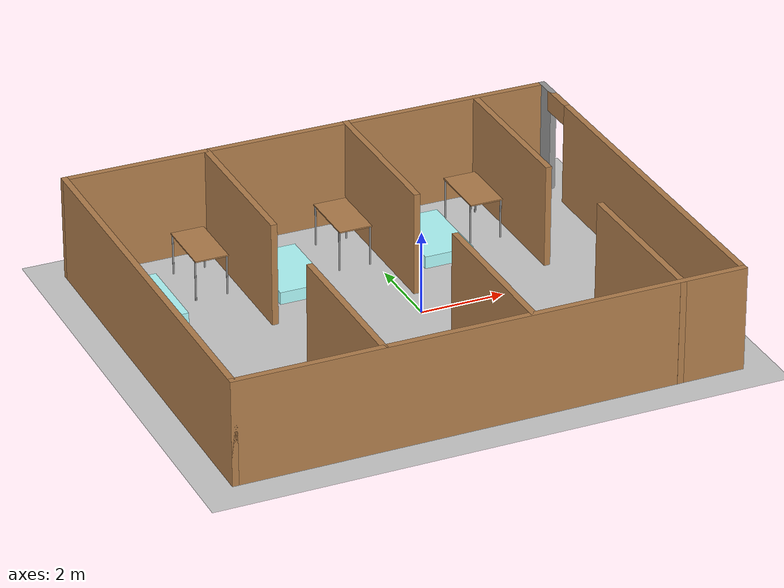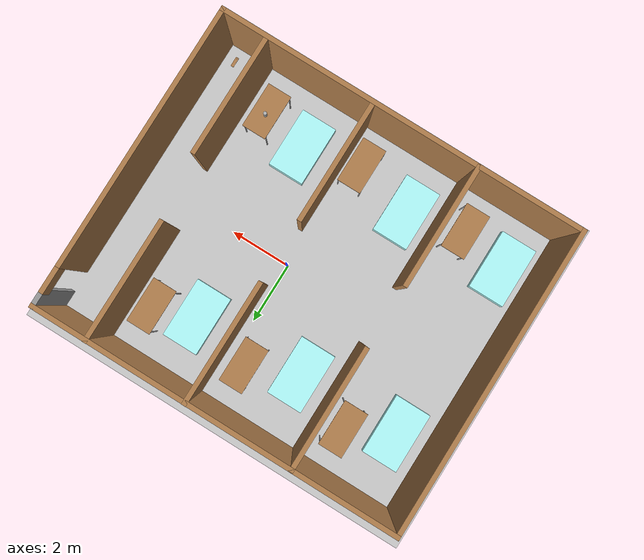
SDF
<sdf version="1.6">
 <world name="default">
  <light name="sun" type="directional">
   <pose>0 0 10 0 -0 0</pose>
   <diffuse>0.8 0.8 0.8 1</diffuse>
   <specular>0.2 0.2 0.2 1</specular>
   <attenuation>
    <range>1000</range>
    <constant>0.9</constant>
    <linear>0.01</linear>
    <quadratic>0.001</quadratic>
   </attenuation>
   <direction>-0.5 0.1 -0.9</direction>
  </light>
  <model name="ground_plane">
   <static>1</static>
   <link name="link">
    <collision name="collision">
     <geometry><plane><normal>0 0 1</normal><size>100 100</size></plane></geometry>
     <surface>
      <contact><collide_bitmask>65535</collide_bitmask></contact>
      <friction><ode><mu>100</mu><mu2>50</mu2></ode></friction>
     </surface>
    </collision>
    <visual name="visual">
     <cast_shadows>0</cast_shadows>
     <geometry><plane><normal>0 0 1</normal><size>100 100</size></plane></geometry>
     <material>
      <script><uri>file://media/materials/scripts/gazebo.material</uri><name>Gazebo/Grey</name></script>
     </material>
    </visual>
   </link>
  </model>
  <gravity>0 0 -9.8</gravity>
  <magnetic_field>6e-06 2.3e-05 -4.2e-05</magnetic_field>
  <atmosphere type="adiabatic"/>
  <physics name="default_physics" default="0" type="ode">
   <max_step_size>0.001</max_step_size>
   <real_time_factor>1</real_time_factor>
   <real_time_update_rate>1000</real_time_update_rate>
  </physics>
  <scene><ambient>0.4 0.4 0.4 1</ambient><background>0.7 0.7 0.7 1</background><shadows>1</shadows></scene>
  <spherical_coordinates>
   <surface_model>EARTH_WGS84</surface_model>
   <latitude_deg>0</latitude_deg>
   <longitude_deg>0</longitude_deg>
   <elevation>0</elevation>
   <heading_deg>0</heading_deg>
  </spherical_coordinates>
  <model name="table">
   <static>1</static>
   <link name="link">
    <collision name="surface">
     <pose>0 0 1 0 -0 0</pose>
     <geometry><box><size>1.5 0.8 0.03</size></box></geometry>
     <surface><friction><ode><mu>0.6</mu><mu2>0.6</mu2></ode></friction></surface>
    </collision>
    <visual name="visual1">
     <pose>0 0 1 0 -0 0</pose>
     <geometry><box><size>1.5 0.8 0.03</size></box></geometry>
     <material>
      <script><uri>file://media/materials/scripts/gazebo.material</uri><name>Gazebo/Wood</name></script>
     </material>
    </visual>
    <collision name="front_left_leg">
     <pose>0.68 0.38 0.5 0 -0 0</pose>
     <geometry><cylinder><radius>0.02</radius><length>1</length></cylinder></geometry>
    </collision>
    <visual name="front_left_leg">
     <pose>0.68 0.38 0.5 0 -0 0</pose>
     <geometry><cylinder><radius>0.02</radius><length>1</length></cylinder></geometry>
     <material>
      <script><uri>file://media/materials/scripts/gazebo.material</uri><name>Gazebo/Grey</name></script>
     </material>
    </visual>
    <collision name="front_right_leg">
     <pose>0.68 -0.38 0.5 0 -0 0</pose>
     <geometry><cylinder><radius>0.02</radius><length>1</length></cylinder></geometry>
    </collision>
    <visual name="front_right_leg">
     <pose>0.68 -0.38 0.5 0 -0 0</pose>
     <geometry><cylinder><radius>0.02</radius><length>1</length></cylinder></geometry>
     <material>
      <script><uri>file://media/materials/scripts/gazebo.material</uri><name>Gazebo/Grey</name></script>
     </material>
    </visual>
    <collision name="back_right_leg">
     <pose>-0.68 -0.38 0.5 0 -0 0</pose>
     <geometry><cylinder><radius>0.02</radius><length>1</length></cylinder></geometry>
    </collision>
    <visual name="back_right_leg">
     <pose>-0.68 -0.38 0.5 0 -0 0</pose>
     <geometry><cylinder><radius>0.02</radius><length>1</length></cylinder></geometry>
     <material>
      <script><uri>file://media/materials/scripts/gazebo.material</uri><name>Gazebo/Grey</name></script>
     </material>
    </visual>
    <collision name="back_left_leg">
     <pose>-0.68 0.38 0.5 0 -0 0</pose>
     <geometry><cylinder><radius>0.02</radius><length>1</length></cylinder></geometry>
    </collision>
    <visual name="back_left_leg">
     <pose>-0.68 0.38 0.5 0 -0 0</pose>
     <geometry><cylinder><radius>0.02</radius><length>1</length></cylinder></geometry>
     <material>
      <script><uri>file://media/materials/scripts/gazebo.material</uri><name>Gazebo/Grey</name></script>
     </material>
    </visual>
   </link>
   <pose>-3.99446 3.24297 0 0 0 -1.5708</pose>
  </model>
  <model name="table_clone">
   <static>1</static>
   <link name="link">
    <collision name="surface">
     <pose>0 0 1 0 -0 0</pose>
     <geometry><box><size>1.5 0.8 0.03</size></box></geometry>
     <surface><friction><ode><mu>0.6</mu><mu2>0.6</mu2></ode></friction></surface>
    </collision>
    <visual name="visual1">
     <pose>0 0 1 0 -0 0</pose>
     <geometry><box><size>1.5 0.8 0.03</size></box></geometry>
     <material>
      <script><uri>file://media/materials/scripts/gazebo.material</uri><name>Gazebo/Wood</name></script>
     </material>
    </visual>
    <collision name="front_left_leg">
     <pose>0.68 0.38 0.5 0 -0 0</pose>
     <geometry><cylinder><radius>0.02</radius><length>1</length></cylinder></geometry>
    </collision>
    <visual name="front_left_leg">
     <pose>0.68 0.38 0.5 0 -0 0</pose>
     <geometry><cylinder><radius>0.02</radius><length>1</length></cylinder></geometry>
     <material>
      <script><uri>file://media/materials/scripts/gazebo.material</uri><name>Gazebo/Grey</name></script>
     </material>
    </visual>
    <collision name="front_right_leg">
     <pose>0.68 -0.38 0.5 0 -0 0</pose>
     <geometry><cylinder><radius>0.02</radius><length>1</length></cylinder></geometry>
    </collision>
    <visual name="front_right_leg">
     <pose>0.68 -0.38 0.5 0 -0 0</pose>
     <geometry><cylinder><radius>0.02</radius><length>1</length></cylinder></geometry>
     <material>
      <script><uri>file://media/materials/scripts/gazebo.material</uri><name>Gazebo/Grey</name></script>
     </material>
    </visual>
    <collision name="back_right_leg">
     <pose>-0.68 -0.38 0.5 0 -0 0</pose>
     <geometry><cylinder><radius>0.02</radius><length>1</length></cylinder></geometry>
    </collision>
    <visual name="back_right_leg">
     <pose>-0.68 -0.38 0.5 0 -0 0</pose>
     <geometry><cylinder><radius>0.02</radius><length>1</length></cylinder></geometry>
     <material>
      <script><uri>file://media/materials/scripts/gazebo.material</uri><name>Gazebo/Grey</name></script>
     </material>
    </visual>
    <collision name="back_left_leg">
     <pose>-0.68 0.38 0.5 0 -0 0</pose>
     <geometry><cylinder><radius>0.02</radius><length>1</length></cylinder></geometry>
    </collision>
    <visual name="back_left_leg">
     <pose>-0.68 0.38 0.5 0 -0 0</pose>
     <geometry><cylinder><radius>0.02</radius><length>1</length></cylinder></geometry>
     <material>
      <script><uri>file://media/materials/scripts/gazebo.material</uri><name>Gazebo/Grey</name></script>
     </material>
    </visual>
   </link>
   <pose>-0.510494 3.20896 0 0 0 -1.5708</pose>
  </model>
  <model name="table_clone_0">
   <static>1</static>
   <link name="link">
    <collision name="surface">
     <pose>0 0 1 0 -0 0</pose>
     <geometry><box><size>1.5 0.8 0.03</size></box></geometry>
     <surface><friction><ode><mu>0.6</mu><mu2>0.6</mu2></ode></friction></surface>
    </collision>
    <visual name="visual1">
     <pose>0 0 1 0 -0 0</pose>
     <geometry><box><size>1.5 0.8 0.03</size></box></geometry>
     <material>
      <script><uri>file://media/materials/scripts/gazebo.material</uri><name>Gazebo/Wood</name></script>
     </material>
    </visual>
    <collision name="front_left_leg">
     <pose>0.68 0.38 0.5 0 -0 0</pose>
     <geometry><cylinder><radius>0.02</radius><length>1</length></cylinder></geometry>
    </collision>
    <visual name="front_left_leg">
     <pose>0.68 0.38 0.5 0 -0 0</pose>
     <geometry><cylinder><radius>0.02</radius><length>1</length></cylinder></geometry>
     <material>
      <script><uri>file://media/materials/scripts/gazebo.material</uri><name>Gazebo/Grey</name></script>
     </material>
    </visual>
    <collision name="front_right_leg">
     <pose>0.68 -0.38 0.5 0 -0 0</pose>
     <geometry><cylinder><radius>0.02</radius><length>1</length></cylinder></geometry>
    </collision>
    <visual name="front_right_leg">
     <pose>0.68 -0.38 0.5 0 -0 0</pose>
     <geometry><cylinder><radius>0.02</radius><length>1</length></cylinder></geometry>
     <material>
      <script><uri>file://media/materials/scripts/gazebo.material</uri><name>Gazebo/Grey</name></script>
     </material>
    </visual>
    <collision name="back_right_leg">
     <pose>-0.68 -0.38 0.5 0 -0 0</pose>
     <geometry><cylinder><radius>0.02</radius><length>1</length></cylinder></geometry>
    </collision>
    <visual name="back_right_leg">
     <pose>-0.68 -0.38 0.5 0 -0 0</pose>
     <geometry><cylinder><radius>0.02</radius><length>1</length></cylinder></geometry>
     <material>
      <script><uri>file://media/materials/scripts/gazebo.material</uri><name>Gazebo/Grey</name></script>
     </material>
    </visual>
    <collision name="back_left_leg">
     <pose>-0.68 0.38 0.5 0 -0 0</pose>
     <geometry><cylinder><radius>0.02</radius><length>1</length></cylinder></geometry>
    </collision>
    <visual name="back_left_leg">
     <pose>-0.68 0.38 0.5 0 -0 0</pose>
     <geometry><cylinder><radius>0.02</radius><length>1</length></cylinder></geometry>
     <material>
      <script><uri>file://media/materials/scripts/gazebo.material</uri><name>Gazebo/Grey</name></script>
     </material>
    </visual>
   </link>
   <pose>2.7438 3.17605 0 0 0 -1.5708</pose>
  </model>
  <model name="table_clone_1">
   <static>1</static>
   <link name="link">
    <collision name="surface">
     <pose>0 0 1 0 -0 0</pose>
     <geometry><box><size>1.5 0.8 0.03</size></box></geometry>
     <surface><friction><ode><mu>0.6</mu><mu2>0.6</mu2></ode></friction></surface>
    </collision>
    <visual name="visual1">
     <pose>0 0 1 0 -0 0</pose>
     <geometry><box><size>1.5 0.8 0.03</size></box></geometry>
     <material>
      <script><uri>file://media/materials/scripts/gazebo.material</uri><name>Gazebo/Wood</name></script>
     </material>
    </visual>
    <collision name="front_left_leg">
     <pose>0.68 0.38 0.5 0 -0 0</pose>
     <geometry><cylinder><radius>0.02</radius><length>1</length></cylinder></geometry>
    </collision>
    <visual name="front_left_leg">
     <pose>0.68 0.38 0.5 0 -0 0</pose>
     <geometry><cylinder><radius>0.02</radius><length>1</length></cylinder></geometry>
     <material>
      <script><uri>file://media/materials/scripts/gazebo.material</uri><name>Gazebo/Grey</name></script>
     </material>
    </visual>
    <collision name="front_right_leg">
     <pose>0.68 -0.38 0.5 0 -0 0</pose>
     <geometry><cylinder><radius>0.02</radius><length>1</length></cylinder></geometry>
    </collision>
    <visual name="front_right_leg">
     <pose>0.68 -0.38 0.5 0 -0 0</pose>
     <geometry><cylinder><radius>0.02</radius><length>1</length></cylinder></geometry>
     <material>
      <script><uri>file://media/materials/scripts/gazebo.material</uri><name>Gazebo/Grey</name></script>
     </material>
    </visual>
    <collision name="back_right_leg">
     <pose>-0.68 -0.38 0.5 0 -0 0</pose>
     <geometry><cylinder><radius>0.02</radius><length>1</length></cylinder></geometry>
    </collision>
    <visual name="back_right_leg">
     <pose>-0.68 -0.38 0.5 0 -0 0</pose>
     <geometry><cylinder><radius>0.02</radius><length>1</length></cylinder></geometry>
     <material>
      <script><uri>file://media/materials/scripts/gazebo.material</uri><name>Gazebo/Grey</name></script>
     </material>
    </visual>
    <collision name="back_left_leg">
     <pose>-0.68 0.38 0.5 0 -0 0</pose>
     <geometry><cylinder><radius>0.02</radius><length>1</length></cylinder></geometry>
    </collision>
    <visual name="back_left_leg">
     <pose>-0.68 0.38 0.5 0 -0 0</pose>
     <geometry><cylinder><radius>0.02</radius><length>1</length></cylinder></geometry>
     <material>
      <script><uri>file://media/materials/scripts/gazebo.material</uri><name>Gazebo/Grey</name></script>
     </material>
    </visual>
   </link>
   <pose>2.95531 -3.58663 0 0 0 -1.5708</pose>
  </model>
  <model name="table_clone_2">
   <static>1</static>
   <link name="link">
    <collision name="surface">
     <pose>0 0 1 0 -0 0</pose>
     <geometry><box><size>1.5 0.8 0.03</size></box></geometry>
     <surface><friction><ode><mu>0.6</mu><mu2>0.6</mu2></ode></friction></surface>
    </collision>
    <visual name="visual1">
     <pose>0 0 1 0 -0 0</pose>
     <geometry><box><size>1.5 0.8 0.03</size></box></geometry>
     <material>
      <script><uri>file://media/materials/scripts/gazebo.material</uri><name>Gazebo/Wood</name></script>
     </material>
    </visual>
    <collision name="front_left_leg">
     <pose>0.68 0.38 0.5 0 -0 0</pose>
     <geometry><cylinder><radius>0.02</radius><length>1</length></cylinder></geometry>
    </collision>
    <visual name="front_left_leg">
     <pose>0.68 0.38 0.5 0 -0 0</pose>
     <geometry><cylinder><radius>0.02</radius><length>1</length></cylinder></geometry>
     <material>
      <script><uri>file://media/materials/scripts/gazebo.material</uri><name>Gazebo/Grey</name></script>
     </material>
    </visual>
    <collision name="front_right_leg">
     <pose>0.68 -0.38 0.5 0 -0 0</pose>
     <geometry><cylinder><radius>0.02</radius><length>1</length></cylinder></geometry>
    </collision>
    <visual name="front_right_leg">
     <pose>0.68 -0.38 0.5 0 -0 0</pose>
     <geometry><cylinder><radius>0.02</radius><length>1</length></cylinder></geometry>
     <material>
      <script><uri>file://media/materials/scripts/gazebo.material</uri><name>Gazebo/Grey</name></script>
     </material>
    </visual>
    <collision name="back_right_leg">
     <pose>-0.68 -0.38 0.5 0 -0 0</pose>
     <geometry><cylinder><radius>0.02</radius><length>1</length></cylinder></geometry>
    </collision>
    <visual name="back_right_leg">
     <pose>-0.68 -0.38 0.5 0 -0 0</pose>
     <geometry><cylinder><radius>0.02</radius><length>1</length></cylinder></geometry>
     <material>
      <script><uri>file://media/materials/scripts/gazebo.material</uri><name>Gazebo/Grey</name></script>
     </material>
    </visual>
    <collision name="back_left_leg">
     <pose>-0.68 0.38 0.5 0 -0 0</pose>
     <geometry><cylinder><radius>0.02</radius><length>1</length></cylinder></geometry>
    </collision>
    <visual name="back_left_leg">
     <pose>-0.68 0.38 0.5 0 -0 0</pose>
     <geometry><cylinder><radius>0.02</radius><length>1</length></cylinder></geometry>
     <material>
      <script><uri>file://media/materials/scripts/gazebo.material</uri><name>Gazebo/Grey</name></script>
     </material>
    </visual>
   </link>
   <pose>-0.330912 -3.70029 0 0 0 -1.5708</pose>
  </model>
  <model name="table_clone_3">
   <static>1</static>
   <link name="link">
    <collision name="surface">
     <pose>0 0 1 0 -0 0</pose>
     <geometry><box><size>1.5 0.8 0.03</size></box></geometry>
     <surface><friction><ode><mu>0.6</mu><mu2>0.6</mu2></ode></friction></surface>
    </collision>
    <visual name="visual1">
     <pose>0 0 1 0 -0 0</pose>
     <geometry><box><size>1.5 0.8 0.03</size></box></geometry>
     <material>
      <script><uri>file://media/materials/scripts/gazebo.material</uri><name>Gazebo/Wood</name></script>
     </material>
    </visual>
    <collision name="front_left_leg">
     <pose>0.68 0.38 0.5 0 -0 0</pose>
     <geometry><cylinder><radius>0.02</radius><length>1</length></cylinder></geometry>
    </collision>
    <visual name="front_left_leg">
     <pose>0.68 0.38 0.5 0 -0 0</pose>
     <geometry><cylinder><radius>0.02</radius><length>1</length></cylinder></geometry>
     <material>
      <script><uri>file://media/materials/scripts/gazebo.material</uri><name>Gazebo/Grey</name></script>
     </material>
    </visual>
    <collision name="front_right_leg">
     <pose>0.68 -0.38 0.5 0 -0 0</pose>
     <geometry><cylinder><radius>0.02</radius><length>1</length></cylinder></geometry>
    </collision>
    <visual name="front_right_leg">
     <pose>0.68 -0.38 0.5 0 -0 0</pose>
     <geometry><cylinder><radius>0.02</radius><length>1</length></cylinder></geometry>
     <material>
      <script><uri>file://media/materials/scripts/gazebo.material</uri><name>Gazebo/Grey</name></script>
     </material>
    </visual>
    <collision name="back_right_leg">
     <pose>-0.68 -0.38 0.5 0 -0 0</pose>
     <geometry><cylinder><radius>0.02</radius><length>1</length></cylinder></geometry>
    </collision>
    <visual name="back_right_leg">
     <pose>-0.68 -0.38 0.5 0 -0 0</pose>
     <geometry><cylinder><radius>0.02</radius><length>1</length></cylinder></geometry>
     <material>
      <script><uri>file://media/materials/scripts/gazebo.material</uri><name>Gazebo/Grey</name></script>
     </material>
    </visual>
    <collision name="back_left_leg">
     <pose>-0.68 0.38 0.5 0 -0 0</pose>
     <geometry><cylinder><radius>0.02</radius><length>1</length></cylinder></geometry>
    </collision>
    <visual name="back_left_leg">
     <pose>-0.68 0.38 0.5 0 -0 0</pose>
     <geometry><cylinder><radius>0.02</radius><length>1</length></cylinder></geometry>
     <material>
      <script><uri>file://media/materials/scripts/gazebo.material</uri><name>Gazebo/Grey</name></script>
     </material>
    </visual>
   </link>
   <pose>-3.9986 -3.65732 0 0 0 -1.5708</pose>
  </model>
  <model name="hospital">
   <pose>-0.664779 -0.17358 0 0 -0 0</pose>
   <link name="Wall_28">
    <collision name="Wall_28_Collision">
     <geometry><box><size>12 0.15 2.5</size></box></geometry>
     <pose>0 0 1.25 0 -0 0</pose>
    </collision>
    <visual name="Wall_28_Visual">
     <pose>0 0 1.25 0 -0 0</pose>
     <geometry><box><size>12 0.15 2.5</size></box></geometry>
     <material>
      <script><uri>file://media/materials/scripts/gazebo.material</uri><name>Gazebo/Wood</name></script>
      <ambient>1 1 1 1</ambient>
     </material>
     <meta><layer>0</layer></meta>
    </visual>
    <pose>-0 4.92328 0 0 -0 0</pose>
   </link>
   <link name="Wall_30">
    <collision name="Wall_30_Collision">
     <geometry><box><size>10 0.15 2.5</size></box></geometry>
     <pose>0 0 1.25 0 -0 0</pose>
    </collision>
    <visual name="Wall_30_Visual">
     <pose>0 0 1.25 0 -0 0</pose>
     <geometry><box><size>10 0.15 2.5</size></box></geometry>
     <material>
      <script><uri>file://media/materials/scripts/gazebo.material</uri><name>Gazebo/Wood</name></script>
      <ambient>1 1 1 1</ambient>
     </material>
     <meta><layer>0</layer></meta>
    </visual>
    <pose>-5.925 -0.001719 0 0 -0 -1.5708</pose>
   </link>
   <link name="Wall_31">
    <collision name="Wall_31_Collision">
     <geometry><box><size>12 0.15 2.5</size></box></geometry>
     <pose>0 0 1.25 0 -0 0</pose>
    </collision>
    <visual name="Wall_31_Visual">
     <pose>0 0 1.25 0 -0 0</pose>
     <geometry><box><size>12 0.15 2.5</size></box></geometry>
     <material>
      <script><uri>file://media/materials/scripts/gazebo.material</uri><name>Gazebo/Wood</name></script>
      <ambient>1 1 1 1</ambient>
     </material>
     <meta><layer>0</layer></meta>
    </visual>
    <pose>-0 -4.92672 0 0 -0 0</pose>
   </link>
   <link name="Wall_32">
    <pose>5.925 -0.251719 0 0 -0 1.5708</pose>
    <visual name="Wall_32_Visual_0">
     <pose>-0.423302 0 1.25 0 -0 0</pose>
     <geometry><box><size>8.65339 0.15 2.5</size></box></geometry>
     <material>
      <script><uri>file://media/materials/scripts/gazebo.material</uri><name>Gazebo/Wood</name></script>
      <ambient>1 1 1 1</ambient>
     </material>
     <meta><layer>0</layer></meta>
    </visual>
    <collision name="Wall_32_Collision_0">
     <geometry><box><size>8.65339 0.15 2.5</size></box></geometry>
     <pose>-0.423302 0 1.25 0 -0 0</pose>
    </collision>
    <visual name="Wall_32_Visual_1">
     <pose>4.3267 0 2.25 0 -0 0</pose>
     <geometry><box><size>0.846605 0.15 0.5</size></box></geometry>
     <material>
      <script><uri>file://media/materials/scripts/gazebo.material</uri><name>Gazebo/Wood</name></script>
      <ambient>1 1 1 1</ambient>
     </material>
     <meta><layer>0</layer></meta>
    </visual>
    <collision name="Wall_32_Collision_1">
     <geometry><box><size>0.846605 0.15 0.5</size></box></geometry>
     <pose>4.3267 0 2.25 0 -0 0</pose>
    </collision>
   </link>
   <link name="Wall_33">
    <collision name="Wall_33_Collision">
     <geometry><box><size>0.65 0.15 2.5</size></box></geometry>
     <pose>0 0 1.25 0 -0 0</pose>
    </collision>
    <visual name="Wall_33_Visual">
     <pose>0 0 1.25 0 -0 0</pose>
     <geometry><box><size>0.65 0.15 2.5</size></box></geometry>
     <material>
      <script><uri>file://media/materials/scripts/gazebo.material</uri><name>Gazebo/Grey</name></script>
      <ambient>1 1 1 1</ambient>
     </material>
     <meta><layer>0</layer></meta>
    </visual>
    <pose>5.925 4.67328 0 0 -0 1.5708</pose>
   </link>
   <link name="Wall_42">
    <collision name="Wall_42_Collision">
     <geometry><box><size>4 0.15 2.5</size></box></geometry>
     <pose>0 0 1.25 0 -0 0</pose>
    </collision>
    <visual name="Wall_42_Visual">
     <pose>0 0 1.25 0 -0 0</pose>
     <geometry><box><size>4 0.15 2.5</size></box></geometry>
     <material>
      <script><uri>file://media/materials/scripts/gazebo.material</uri><name>Gazebo/Wood</name></script>
      <ambient>1 1 1 1</ambient>
     </material>
     <meta><layer>0</layer></meta>
    </visual>
    <pose>-2.51881 2.98168 0 0 -0 -1.5708</pose>
   </link>
   <link name="Wall_45">
    <collision name="Wall_45_Collision">
     <geometry><box><size>4 0.15 2.5</size></box></geometry>
     <pose>0 0 1.25 0 -0 0</pose>
    </collision>
    <visual name="Wall_45_Visual">
     <pose>0 0 1.25 0 -0 0</pose>
     <geometry><box><size>4 0.15 2.5</size></box></geometry>
     <material>
      <script><uri>file://media/materials/scripts/gazebo.material</uri><name>Gazebo/Wood</name></script>
      <ambient>1 1 1 1</ambient>
     </material>
     <meta><layer>0</layer></meta>
    </visual>
    <pose>0.931193 3.00468 0 0 -0 -1.5708</pose>
   </link>
   <link name="Wall_47">
    <collision name="Wall_47_Collision">
     <geometry><box><size>4 0.15 2.5</size></box></geometry>
     <pose>0 0 1.25 0 -0 0</pose>
    </collision>
    <visual name="Wall_47_Visual">
     <pose>0 0 1.25 0 -0 0</pose>
     <geometry><box><size>4 0.15 2.5</size></box></geometry>
     <material>
      <script><uri>file://media/materials/scripts/gazebo.material</uri><name>Gazebo/Wood</name></script>
      <ambient>1 1 1 1</ambient>
     </material>
     <meta><layer>0</layer></meta>
    </visual>
    <pose>4.17419 3.00468 0 0 -0 -1.5708</pose>
   </link>
   <link name="Wall_49">
    <collision name="Wall_49_Collision">
     <geometry><box><size>4 0.15 2.5</size></box></geometry>
     <pose>0 0 1.25 0 -0 0</pose>
    </collision>
    <visual name="Wall_49_Visual">
     <pose>0 0 1.25 0 -0 0</pose>
     <geometry><box><size>4 0.15 2.5</size></box></geometry>
     <material>
      <script><uri>file://media/materials/scripts/gazebo.material</uri><name>Gazebo/Wood</name></script>
      <ambient>1 1 1 1</ambient>
     </material>
     <meta><layer>0</layer></meta>
    </visual>
    <pose>-2.51795 -2.98168 0 0 -0 1.5708</pose>
   </link>
   <link name="Wall_51">
    <collision name="Wall_51_Collision">
     <geometry><box><size>4 0.15 2.5</size></box></geometry>
     <pose>0 0 1.25 0 -0 0</pose>
    </collision>
    <visual name="Wall_51_Visual">
     <pose>0 0 1.25 0 -0 0</pose>
     <geometry><box><size>4 0.15 2.5</size></box></geometry>
     <material>
      <script><uri>file://media/materials/scripts/gazebo.material</uri><name>Gazebo/Wood</name></script>
      <ambient>1 1 1 1</ambient>
     </material>
     <meta><layer>0</layer></meta>
    </visual>
    <pose>0.93205 -2.98168 0 0 -0 1.5708</pose>
   </link>
   <link name="Wall_53">
    <collision name="Wall_53_Collision">
     <geometry><box><size>4 0.15 2.5</size></box></geometry>
     <pose>0 0 1.25 0 -0 0</pose>
    </collision>
    <visual name="Wall_53_Visual">
     <pose>0 0 1.25 0 -0 0</pose>
     <geometry><box><size>4 0.15 2.5</size></box></geometry>
     <material>
      <script><uri>file://media/materials/scripts/gazebo.material</uri><name>Gazebo/Wood</name></script>
      <ambient>1 1 1 1</ambient>
     </material>
     <meta><layer>0</layer></meta>
    </visual>
    <pose>4.45105 -3.00468 0 0 -0 1.5708</pose>
   </link>
   <static>1</static>
  </model>
  <model name="Bed">
   <link name="link_1">
    <inertial>
     <mass>700</mass>
     <inertia><ixx>116.667</ixx><ixy>0</ixy><ixz>0</ixz><iyy>116.667</iyy><iyz>0</iyz><izz>116.667</izz></inertia>
    </inertial>
    <visual name="visual">
     <geometry><box><size>1.2 2 0.3</size></box></geometry>
     <material>
      <lighting>1</lighting>
      <script><uri>file://media/materials/scripts/gazebo.material</uri><name>Gazebo/Grey</name></script>
      <shader type="pixel"><normal_map>__default__</normal_map></shader>
      <ambient>1 0.3 0.3 1</ambient>
      <diffuse>0.7 1 1 1</diffuse>
      <specular>1 1 0.01 1</specular>
      <emissive>0 1 1 1</emissive>
     </material>
    </visual>
    <collision name="collision">
     <geometry><box><size>1.2 2 0.3</size></box></geometry>
     <surface>
      <friction>
       <ode><mu>1</mu><mu2>1</mu2><fdir1>0 0 0</fdir1><slip1>0</slip1><slip2>0</slip2></ode>
       <torsional>
        <coefficient>1</coefficient>
        <patch_radius>0</patch_radius>
        <surface_radius>0</surface_radius>
        <use_patch_radius>1</use_patch_radius>
        <ode><slip>0</slip></ode>
       </torsional>
      </friction>
      <bounce><restitution_coefficient>0</restitution_coefficient><threshold>1e+06</threshold></bounce>
      <contact>
       <collide_without_contact>0</collide_without_contact>
       <collide_without_contact_bitmask>1</collide_without_contact_bitmask>
       <collide_bitmask>1</collide_bitmask>
       <ode>
        <soft_cfm>0</soft_cfm>
        <soft_erp>0.2</soft_erp>
        <kp>1e+13</kp>
        <kd>1</kd>
        <max_vel>0.01</max_vel>
        <min_depth>0</min_depth>
       </ode>
       <bullet>
        <split_impulse>1</split_impulse>
        <split_impulse_penetration_threshold>-0.01</split_impulse_penetration_threshold>
        <soft_cfm>0</soft_cfm>
        <soft_erp>0.2</soft_erp>
        <kp>1e+13</kp>
        <kd>1</kd>
       </bullet>
      </contact>
     </surface>
    </collision>
   </link>
   <static>0</static>
   <pose>1.56551 -3.37109 0.15 0 -0 0</pose>
  </model>
  <model name="Bed_0">
   <link name="link_1">
    <inertial>
     <mass>700</mass>
     <inertia><ixx>116.667</ixx><ixy>0</ixy><ixz>0</ixz><iyy>116.667</iyy><iyz>0</iyz><izz>116.667</izz></inertia>
    </inertial>
    <visual name="visual">
     <geometry><box><size>1.2 2 0.3</size></box></geometry>
     <material>
      <lighting>1</lighting>
      <script><uri>file://media/materials/scripts/gazebo.material</uri><name>Gazebo/Grey</name></script>
      <shader type="pixel"><normal_map>__default__</normal_map></shader>
      <ambient>1 0.3 0.3 1</ambient>
      <diffuse>0.7 1 1 1</diffuse>
      <specular>1 1 0.01 1</specular>
      <emissive>0 1 1 1</emissive>
     </material>
    </visual>
    <collision name="collision">
     <geometry><box><size>1.2 2 0.3</size></box></geometry>
     <surface>
      <friction>
       <ode><mu>1</mu><mu2>1</mu2><fdir1>0 0 0</fdir1><slip1>0</slip1><slip2>0</slip2></ode>
       <torsional>
        <coefficient>1</coefficient>
        <patch_radius>0</patch_radius>
        <surface_radius>0</surface_radius>
        <use_patch_radius>1</use_patch_radius>
        <ode><slip>0</slip></ode>
       </torsional>
      </friction>
      <bounce><restitution_coefficient>0</restitution_coefficient><threshold>1e+06</threshold></bounce>
      <contact>
       <collide_without_contact>0</collide_without_contact>
       <collide_without_contact_bitmask>1</collide_without_contact_bitmask>
       <collide_bitmask>1</collide_bitmask>
       <ode>
        <soft_cfm>0</soft_cfm>
        <soft_erp>0.2</soft_erp>
        <kp>1e+13</kp>
        <kd>1</kd>
        <max_vel>0.01</max_vel>
        <min_depth>0</min_depth>
       </ode>
       <bullet>
        <split_impulse>1</split_impulse>
        <split_impulse_penetration_threshold>-0.01</split_impulse_penetration_threshold>
        <soft_cfm>0</soft_cfm>
        <soft_erp>0.2</soft_erp>
        <kp>1e+13</kp>
        <kd>1</kd>
       </bullet>
      </contact>
     </surface>
    </collision>
   </link>
   <static>0</static>
   <pose>-2.23846 -3.34989 0.15 0 -0 0</pose>
  </model>
  <model name="Bed_1">
   <link name="link_1">
    <inertial>
     <mass>700</mass>
     <inertia><ixx>116.667</ixx><ixy>0</ixy><ixz>0</ixz><iyy>116.667</iyy><iyz>0</iyz><izz>116.667</izz></inertia>
    </inertial>
    <visual name="visual">
     <geometry><box><size>1.2 2 0.3</size></box></geometry>
     <material>
      <lighting>1</lighting>
      <script><uri>file://media/materials/scripts/gazebo.material</uri><name>Gazebo/Grey</name></script>
      <shader type="pixel"><normal_map>__default__</normal_map></shader>
      <ambient>1 0.3 0.3 1</ambient>
      <diffuse>0.7 1 1 1</diffuse>
      <specular>1 1 0.01 1</specular>
      <emissive>0 1 1 1</emissive>
     </material>
    </visual>
    <collision name="collision">
     <geometry><box><size>1.2 2 0.3</size></box></geometry>
     <surface>
      <friction>
       <ode><mu>1</mu><mu2>1</mu2><fdir1>0 0 0</fdir1><slip1>0</slip1><slip2>0</slip2></ode>
       <torsional>
        <coefficient>1</coefficient>
        <patch_radius>0</patch_radius>
        <surface_radius>0</surface_radius>
        <use_patch_radius>1</use_patch_radius>
        <ode><slip>0</slip></ode>
       </torsional>
      </friction>
      <bounce><restitution_coefficient>0</restitution_coefficient><threshold>1e+06</threshold></bounce>
      <contact>
       <collide_without_contact>0</collide_without_contact>
       <collide_without_contact_bitmask>1</collide_without_contact_bitmask>
       <collide_bitmask>1</collide_bitmask>
       <ode>
        <soft_cfm>0</soft_cfm>
        <soft_erp>0.2</soft_erp>
        <kp>1e+13</kp>
        <kd>1</kd>
        <max_vel>0.01</max_vel>
        <min_depth>0</min_depth>
       </ode>
       <bullet>
        <split_impulse>1</split_impulse>
        <split_impulse_penetration_threshold>-0.01</split_impulse_penetration_threshold>
        <soft_cfm>0</soft_cfm>
        <soft_erp>0.2</soft_erp>
        <kp>1e+13</kp>
        <kd>1</kd>
       </bullet>
      </contact>
     </surface>
    </collision>
   </link>
   <static>0</static>
   <pose>-5.66815 -3.41681 0.15 0 -0 0</pose>
  </model>
  <model name="Bed_2">
   <link name="link_1">
    <inertial>
     <mass>700</mass>
     <inertia><ixx>116.667</ixx><ixy>0</ixy><ixz>0</ixz><iyy>116.667</iyy><iyz>0</iyz><izz>116.667</izz></inertia>
    </inertial>
    <visual name="visual">
     <geometry><box><size>1.2 2 0.3</size></box></geometry>
     <material>
      <lighting>1</lighting>
      <script><uri>file://media/materials/scripts/gazebo.material</uri><name>Gazebo/Grey</name></script>
      <shader type="pixel"><normal_map>__default__</normal_map></shader>
      <ambient>1 0.3 0.3 1</ambient>
      <diffuse>0.7 1 1 1</diffuse>
      <specular>1 1 0.01 1</specular>
      <emissive>0 1 1 1</emissive>
     </material>
    </visual>
    <collision name="collision">
     <geometry><box><size>1.2 2 0.3</size></box></geometry>
     <surface>
      <friction>
       <ode><mu>1</mu><mu2>1</mu2><fdir1>0 0 0</fdir1><slip1>0</slip1><slip2>0</slip2></ode>
       <torsional>
        <coefficient>1</coefficient>
        <patch_radius>0</patch_radius>
        <surface_radius>0</surface_radius>
        <use_patch_radius>1</use_patch_radius>
        <ode><slip>0</slip></ode>
       </torsional>
      </friction>
      <bounce><restitution_coefficient>0</restitution_coefficient><threshold>1e+06</threshold></bounce>
      <contact>
       <collide_without_contact>0</collide_without_contact>
       <collide_without_contact_bitmask>1</collide_without_contact_bitmask>
       <collide_bitmask>1</collide_bitmask>
       <ode>
        <soft_cfm>0</soft_cfm>
        <soft_erp>0.2</soft_erp>
        <kp>1e+13</kp>
        <kd>1</kd>
        <max_vel>0.01</max_vel>
        <min_depth>0</min_depth>
       </ode>
       <bullet>
        <split_impulse>1</split_impulse>
        <split_impulse_penetration_threshold>-0.01</split_impulse_penetration_threshold>
        <soft_cfm>0</soft_cfm>
        <soft_erp>0.2</soft_erp>
        <kp>1e+13</kp>
        <kd>1</kd>
       </bullet>
      </contact>
     </surface>
    </collision>
   </link>
   <static>0</static>
   <pose>1.51819 2.80789 0.15 0 -0 0</pose>
  </model>
  <model name="Bed_3">
   <link name="link_1">
    <inertial>
     <mass>700</mass>
     <inertia><ixx>116.667</ixx><ixy>0</ixy><ixz>0</ixz><iyy>116.667</iyy><iyz>0</iyz><izz>116.667</izz></inertia>
    </inertial>
    <visual name="visual">
     <geometry><box><size>1.2 2 0.3</size></box></geometry>
     <material>
      <lighting>1</lighting>
      <script><uri>file://media/materials/scripts/gazebo.material</uri><name>Gazebo/Grey</name></script>
      <shader type="pixel"><normal_map>__default__</normal_map></shader>
      <ambient>1 0.3 0.3 1</ambient>
      <diffuse>0.7 1 1 1</diffuse>
      <specular>1 1 0.01 1</specular>
      <emissive>0 1 1 1</emissive>
     </material>
    </visual>
    <collision name="collision">
     <geometry><box><size>1.2 2 0.3</size></box></geometry>
     <surface>
      <friction>
       <ode><mu>1</mu><mu2>1</mu2><fdir1>0 0 0</fdir1><slip1>0</slip1><slip2>0</slip2></ode>
       <torsional>
        <coefficient>1</coefficient>
        <patch_radius>0</patch_radius>
        <surface_radius>0</surface_radius>
        <use_patch_radius>1</use_patch_radius>
        <ode><slip>0</slip></ode>
       </torsional>
      </friction>
      <bounce><restitution_coefficient>0</restitution_coefficient><threshold>1e+06</threshold></bounce>
      <contact>
       <collide_without_contact>0</collide_without_contact>
       <collide_without_contact_bitmask>1</collide_without_contact_bitmask>
       <collide_bitmask>1</collide_bitmask>
       <ode>
        <soft_cfm>0</soft_cfm>
        <soft_erp>0.2</soft_erp>
        <kp>1e+13</kp>
        <kd>1</kd>
        <max_vel>0.01</max_vel>
        <min_depth>0</min_depth>
       </ode>
       <bullet>
        <split_impulse>1</split_impulse>
        <split_impulse_penetration_threshold>-0.01</split_impulse_penetration_threshold>
        <soft_cfm>0</soft_cfm>
        <soft_erp>0.2</soft_erp>
        <kp>1e+13</kp>
        <kd>1</kd>
       </bullet>
      </contact>
     </surface>
    </collision>
   </link>
   <static>0</static>
   <pose>-2.12774 2.6069 0.15 0 -0 0</pose>
  </model>
  <model name="Bed_4">
   <link name="link_1">
    <inertial>
     <mass>700</mass>
     <inertia><ixx>116.667</ixx><ixy>0</ixy><ixz>0</ixz><iyy>116.667</iyy><iyz>0</iyz><izz>116.667</izz></inertia>
    </inertial>
    <visual name="visual">
     <geometry><box><size>1.2 2 0.3</size></box></geometry>
     <material>
      <lighting>1</lighting>
      <script><uri>file://media/materials/scripts/gazebo.material</uri><name>Gazebo/Grey</name></script>
      <shader type="pixel"><normal_map>__default__</normal_map></shader>
      <ambient>1 0.3 0.3 1</ambient>
      <diffuse>0.7 1 1 1</diffuse>
      <specular>1 1 0.01 1</specular>
      <emissive>0 1 1 1</emissive>
     </material>
    </visual>
    <collision name="collision">
     <geometry><box><size>1.2 2 0.3</size></box></geometry>
     <surface>
      <friction>
       <ode><mu>1</mu><mu2>1</mu2><fdir1>0 0 0</fdir1><slip1>0</slip1><slip2>0</slip2></ode>
       <torsional>
        <coefficient>1</coefficient>
        <patch_radius>0</patch_radius>
        <surface_radius>0</surface_radius>
        <use_patch_radius>1</use_patch_radius>
        <ode><slip>0</slip></ode>
       </torsional>
      </friction>
      <bounce><restitution_coefficient>0</restitution_coefficient><threshold>1e+06</threshold></bounce>
      <contact>
       <collide_without_contact>0</collide_without_contact>
       <collide_without_contact_bitmask>1</collide_without_contact_bitmask>
       <collide_bitmask>1</collide_bitmask>
       <ode>
        <soft_cfm>0</soft_cfm>
        <soft_erp>0.2</soft_erp>
        <kp>1e+13</kp>
        <kd>1</kd>
        <max_vel>0.01</max_vel>
        <min_depth>0</min_depth>
       </ode>
       <bullet>
        <split_impulse>1</split_impulse>
        <split_impulse_penetration_threshold>-0.01</split_impulse_penetration_threshold>
        <soft_cfm>0</soft_cfm>
        <soft_erp>0.2</soft_erp>
        <kp>1e+13</kp>
        <kd>1</kd>
       </bullet>
      </contact>
     </surface>
    </collision>
   </link>
   <static>0</static>
   <pose>-5.53027 2.58909 0.15 0 -0 0</pose>
  </model>
  <model name="beer">
   <link name="link">
    <pose>0 0 0.115 0 -0 0</pose>
    <inertial>
     <mass>0.39</mass>
     <inertia><ixx>0.00058</ixx><ixy>0</ixy><ixz>0</ixz><iyy>0.00058</iyy><iyz>0</iyz><izz>0.00019</izz></inertia>
    </inertial>
    <collision name="collision">
     <geometry><cylinder><radius>0.055</radius><length>0.23</length></cylinder></geometry>
    </collision>
    <visual name="visual">
     <geometry><cylinder><radius>0.055</radius><length>0.23</length></cylinder></geometry>
     <material>
      <script>
       <uri>model://beer/materials/scripts</uri>
       <uri>model://beer/materials/textures</uri>
       <name>Beer/Diffuse</name>
      </script>
     </material>
    </visual>
   </link>
   <pose>2.92205 -3.46155 1.01499 9e-06 7.1e-05 -0.000535</pose>
  </model>
  <model name="wooden_board">
   <link name="base">
    <pose>0 0 0.00523 0 -0 0</pose>
    <inertial>
     <mass>0.2765</mass>
     <inertia>
      <ixx>0.0025148</ixx>
      <ixy>0</ixy>
      <ixz>0</ixz>
      <iyy>0.00024037</iyy>
      <iyz>0</iyz>
      <izz>0.00275013</izz>
     </inertia>
    </inertial>
    <collision name="collision">
     <geometry><box><size>0.1016 0.3302 0.01046</size></box></geometry>
     <surface>
      <contact>
       <poissons_ratio>0.347</poissons_ratio>
       <elastic_modulus>8.8e+09</elastic_modulus>
       <ode><kp>100000</kp><kd>100</kd><max_vel>100</max_vel><min_depth>0.001</min_depth></ode>
      </contact>
      <friction>
       <torsional>
        <coefficient>1</coefficient>
        <use_patch_radius>0</use_patch_radius>
        <surface_radius>0.01</surface_radius>
       </torsional>
      </friction>
     </surface>
    </collision>
    <visual name="visual">
     <geometry><box><size>0.1016 0.3302 0.01046</size></box></geometry>
     <material>
      <script><uri>file://media/materials/scripts/gazebo.material</uri><name>Gazebo/Wood</name></script>
     </material>
    </visual>
    <visual name="tee_nut_1">
     <pose>0 -0.116 0 0 -0 0</pose>
     <geometry><cylinder><radius>0.00635</radius><length>0.0105646</length></cylinder></geometry>
     <material>
      <script><uri>file://media/materials/scripts/gazebo.material</uri><name>Gazebo/Grey</name></script>
     </material>
    </visual>
    <visual name="tee_nut_2">
     <pose>0 -0.038 0 0 -0 0</pose>
     <geometry><cylinder><radius>0.00635</radius><length>0.0105646</length></cylinder></geometry>
     <material>
      <script><uri>file://media/materials/scripts/gazebo.material</uri><name>Gazebo/Grey</name></script>
     </material>
    </visual>
    <visual name="tee_nut_3">
     <pose>0 0.038 0 0 -0 0</pose>
     <geometry><cylinder><radius>0.00635</radius><length>0.0105646</length></cylinder></geometry>
     <material>
      <script><uri>file://media/materials/scripts/gazebo.material</uri><name>Gazebo/Grey</name></script>
     </material>
    </visual>
    <visual name="tee_nut_4">
     <pose>0 0.116 0 0 -0 0</pose>
     <geometry><cylinder><radius>0.00635</radius><length>0.0105646</length></cylinder></geometry>
     <material>
      <script><uri>file://media/materials/scripts/gazebo.material</uri><name>Gazebo/Grey</name></script>
     </material>
    </visual>
   </link>
   <pose>4.84429 -4.5835 -0.001007 0 -0 0</pose>
  </model>
 </world>
</sdf>
